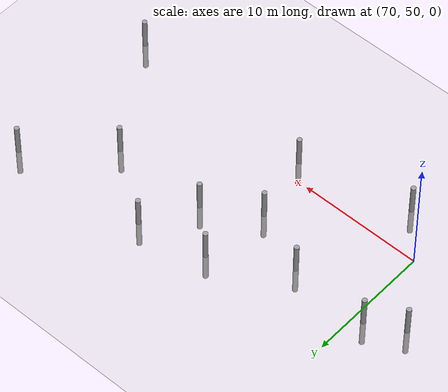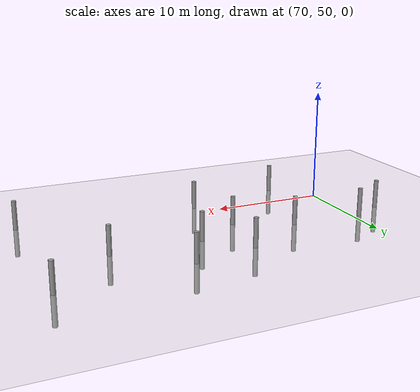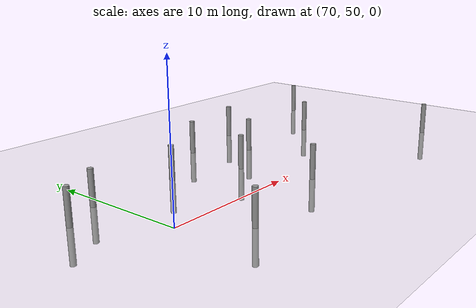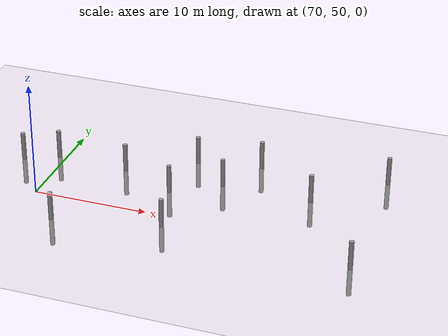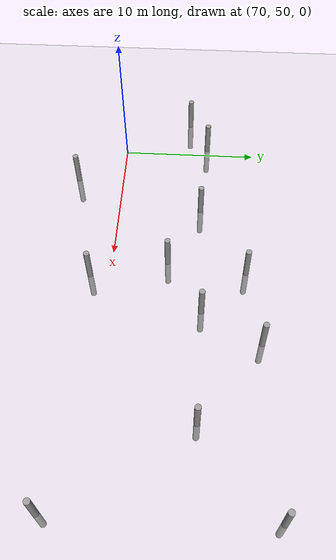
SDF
<sdf version="1.6">
 <world name="default">
  <model name="ground_plane">
   <static>1</static>
   <link name="link">
    <collision name="collision">
     <geometry><plane><normal>0 0 1</normal><size>100 100</size></plane></geometry>
     <surface><friction><ode><mu>100</mu><mu2>50</mu2></ode></friction></surface>
    </collision>
    <visual name="visual">
     <cast_shadows>0</cast_shadows>
     <geometry><plane><normal>0 0 1</normal><size>100 100</size></plane></geometry>
     <material>
      <script><uri>file://media/materials/scripts/gazebo.material</uri><name>Gazebo/Grey</name></script>
     </material>
    </visual>
   </link>
  </model>
  <model name="empty_pillars_2">
   <model name="empty_pillar_clone_10">
    <link name="link">
     <inertial>
      <mass>1</mass>
      <inertia><ixx>0.145833</ixx><ixy>0</ixy><ixz>0</ixz><iyy>0.145833</iyy><iyz>0</iyz><izz>0.125</izz></inertia>
     </inertial>
     <visual name="visual">
      <geometry><cylinder><radius>0.2</radius><length>5</length></cylinder></geometry>
      <material>
       <script><name>Gazebo/Grey</name><uri>file://media/materials/scripts/gazebo.material</uri></script>
       <shader type="vertex"><normal_map>__default__</normal_map></shader>
       <ambient>0.3 0.3 0.3 1</ambient>
       <diffuse>0.7 0.7 0.7 1</diffuse>
       <specular>0.01 0.01 0.01 1</specular>
       <emissive>0 0 0 1</emissive>
      </material>
     </visual>
     <collision name="collision">
      <geometry><cylinder><radius>0.05</radius><length>5</length></cylinder></geometry>
      <surface>
       <friction>
        <ode><mu>1</mu><mu2>1</mu2><fdir1>0 0 0</fdir1><slip1>0</slip1><slip2>0</slip2></ode>
        <torsional>
         <coefficient>1</coefficient>
         <patch_radius>0</patch_radius>
         <surface_radius>0</surface_radius>
         <use_patch_radius>1</use_patch_radius>
         <ode><slip>0</slip></ode>
        </torsional>
       </friction>
       <bounce><restitution_coefficient>0</restitution_coefficient><threshold>1e+06</threshold></bounce>
       <contact>
        <collide_without_contact>0</collide_without_contact>
        <collide_without_contact_bitmask>1</collide_without_contact_bitmask>
        <collide_bitmask>1</collide_bitmask>
        <ode>
         <soft_cfm>0</soft_cfm>
         <soft_erp>0.2</soft_erp>
         <kp>1e+13</kp>
         <kd>1</kd>
         <max_vel>0.01</max_vel>
         <min_depth>0</min_depth>
        </ode>
        <bullet>
         <split_impulse>1</split_impulse>
         <split_impulse_penetration_threshold>-0.01</split_impulse_penetration_threshold>
         <soft_cfm>0</soft_cfm>
         <soft_erp>0.2</soft_erp>
         <kp>1e+13</kp>
         <kd>1</kd>
        </bullet>
       </contact>
      </surface>
     </collision>
    </link>
    <static>0</static>
    <pose>13.5083 -16.8403 0 0 -0 0</pose>
   </model>
   <model name="empty_pillar_clone_11">
    <link name="link">
     <inertial>
      <mass>1</mass>
      <inertia><ixx>0.145833</ixx><ixy>0</ixy><ixz>0</ixz><iyy>0.145833</iyy><iyz>0</iyz><izz>0.125</izz></inertia>
     </inertial>
     <visual name="visual">
      <geometry><cylinder><radius>0.2</radius><length>5</length></cylinder></geometry>
      <material>
       <script><name>Gazebo/Grey</name><uri>file://media/materials/scripts/gazebo.material</uri></script>
       <shader type="vertex"><normal_map>__default__</normal_map></shader>
       <ambient>0.3 0.3 0.3 1</ambient>
       <diffuse>0.7 0.7 0.7 1</diffuse>
       <specular>0.01 0.01 0.01 1</specular>
       <emissive>0 0 0 1</emissive>
      </material>
     </visual>
     <collision name="collision">
      <geometry><cylinder><radius>0.05</radius><length>5</length></cylinder></geometry>
      <surface>
       <friction>
        <ode><mu>1</mu><mu2>1</mu2><fdir1>0 0 0</fdir1><slip1>0</slip1><slip2>0</slip2></ode>
        <torsional>
         <coefficient>1</coefficient>
         <patch_radius>0</patch_radius>
         <surface_radius>0</surface_radius>
         <use_patch_radius>1</use_patch_radius>
         <ode><slip>0</slip></ode>
        </torsional>
       </friction>
       <bounce><restitution_coefficient>0</restitution_coefficient><threshold>1e+06</threshold></bounce>
       <contact>
        <collide_without_contact>0</collide_without_contact>
        <collide_without_contact_bitmask>1</collide_without_contact_bitmask>
        <collide_bitmask>1</collide_bitmask>
        <ode>
         <soft_cfm>0</soft_cfm>
         <soft_erp>0.2</soft_erp>
         <kp>1e+13</kp>
         <kd>1</kd>
         <max_vel>0.01</max_vel>
         <min_depth>0</min_depth>
        </ode>
        <bullet>
         <split_impulse>1</split_impulse>
         <split_impulse_penetration_threshold>-0.01</split_impulse_penetration_threshold>
         <soft_cfm>0</soft_cfm>
         <soft_erp>0.2</soft_erp>
         <kp>1e+13</kp>
         <kd>1</kd>
        </bullet>
       </contact>
      </surface>
     </collision>
    </link>
    <static>0</static>
    <pose>7.98536 -17.8403 0 0 -0 0</pose>
   </model>
   <model name="empty_pillar_clone_12">
    <link name="link">
     <inertial>
      <mass>1</mass>
      <inertia><ixx>0.145833</ixx><ixy>0</ixy><ixz>0</ixz><iyy>0.145833</iyy><iyz>0</iyz><izz>0.125</izz></inertia>
     </inertial>
     <visual name="visual">
      <geometry><cylinder><radius>0.2</radius><length>5</length></cylinder></geometry>
      <material>
       <script><name>Gazebo/Grey</name><uri>file://media/materials/scripts/gazebo.material</uri></script>
       <shader type="vertex"><normal_map>__default__</normal_map></shader>
       <ambient>0.3 0.3 0.3 1</ambient>
       <diffuse>0.7 0.7 0.7 1</diffuse>
       <specular>0.01 0.01 0.01 1</specular>
       <emissive>0 0 0 1</emissive>
      </material>
     </visual>
     <collision name="collision">
      <geometry><cylinder><radius>0.05</radius><length>5</length></cylinder></geometry>
      <surface>
       <friction>
        <ode><mu>1</mu><mu2>1</mu2><fdir1>0 0 0</fdir1><slip1>0</slip1><slip2>0</slip2></ode>
        <torsional>
         <coefficient>1</coefficient>
         <patch_radius>0</patch_radius>
         <surface_radius>0</surface_radius>
         <use_patch_radius>1</use_patch_radius>
         <ode><slip>0</slip></ode>
        </torsional>
       </friction>
       <bounce><restitution_coefficient>0</restitution_coefficient><threshold>1e+06</threshold></bounce>
       <contact>
        <collide_without_contact>0</collide_without_contact>
        <collide_without_contact_bitmask>1</collide_without_contact_bitmask>
        <collide_bitmask>1</collide_bitmask>
        <ode>
         <soft_cfm>0</soft_cfm>
         <soft_erp>0.2</soft_erp>
         <kp>1e+13</kp>
         <kd>1</kd>
         <max_vel>0.01</max_vel>
         <min_depth>0</min_depth>
        </ode>
        <bullet>
         <split_impulse>1</split_impulse>
         <split_impulse_penetration_threshold>-0.01</split_impulse_penetration_threshold>
         <soft_cfm>0</soft_cfm>
         <soft_erp>0.2</soft_erp>
         <kp>1e+13</kp>
         <kd>1</kd>
        </bullet>
       </contact>
      </surface>
     </collision>
    </link>
    <static>0</static>
    <pose>-4.01464 -20.8403 0 0 -0 0</pose>
   </model>
   <model name="empty_pillar_clone_34">
    <link name="link">
     <inertial>
      <mass>1</mass>
      <inertia><ixx>0.145833</ixx><ixy>0</ixy><ixz>0</ixz><iyy>0.145833</iyy><iyz>0</iyz><izz>0.125</izz></inertia>
     </inertial>
     <visual name="visual">
      <geometry><cylinder><radius>0.2</radius><length>5</length></cylinder></geometry>
      <material>
       <script><name>Gazebo/Grey</name><uri>file://media/materials/scripts/gazebo.material</uri></script>
       <shader type="vertex"><normal_map>__default__</normal_map></shader>
       <ambient>0.3 0.3 0.3 1</ambient>
       <diffuse>0.7 0.7 0.7 1</diffuse>
       <specular>0.01 0.01 0.01 1</specular>
       <emissive>0 0 0 1</emissive>
      </material>
     </visual>
     <collision name="collision">
      <geometry><cylinder><radius>0.05</radius><length>5</length></cylinder></geometry>
      <surface>
       <friction>
        <ode><mu>1</mu><mu2>1</mu2><fdir1>0 0 0</fdir1><slip1>0</slip1><slip2>0</slip2></ode>
        <torsional>
         <coefficient>1</coefficient>
         <patch_radius>0</patch_radius>
         <surface_radius>0</surface_radius>
         <use_patch_radius>1</use_patch_radius>
         <ode><slip>0</slip></ode>
        </torsional>
       </friction>
       <bounce><restitution_coefficient>0</restitution_coefficient><threshold>1e+06</threshold></bounce>
       <contact>
        <collide_without_contact>0</collide_without_contact>
        <collide_without_contact_bitmask>1</collide_without_contact_bitmask>
        <collide_bitmask>1</collide_bitmask>
        <ode>
         <soft_cfm>0</soft_cfm>
         <soft_erp>0.2</soft_erp>
         <kp>1e+13</kp>
         <kd>1</kd>
         <max_vel>0.01</max_vel>
         <min_depth>0</min_depth>
        </ode>
        <bullet>
         <split_impulse>1</split_impulse>
         <split_impulse_penetration_threshold>-0.01</split_impulse_penetration_threshold>
         <soft_cfm>0</soft_cfm>
         <soft_erp>0.2</soft_erp>
         <kp>1e+13</kp>
         <kd>1</kd>
        </bullet>
       </contact>
      </surface>
     </collision>
    </link>
    <static>0</static>
    <pose>19.0861 -20.8946 0 0 -0 0</pose>
   </model>
   <model name="empty_pillar_clone_44">
    <link name="link">
     <inertial>
      <mass>1</mass>
      <inertia><ixx>0.145833</ixx><ixy>0</ixy><ixz>0</ixz><iyy>0.145833</iyy><iyz>0</iyz><izz>0.125</izz></inertia>
     </inertial>
     <visual name="visual">
      <geometry><cylinder><radius>0.2</radius><length>5</length></cylinder></geometry>
      <material>
       <script><name>Gazebo/Grey</name><uri>file://media/materials/scripts/gazebo.material</uri></script>
       <shader type="vertex"><normal_map>__default__</normal_map></shader>
       <ambient>0.3 0.3 0.3 1</ambient>
       <diffuse>0.7 0.7 0.7 1</diffuse>
       <specular>0.01 0.01 0.01 1</specular>
       <emissive>0 0 0 1</emissive>
      </material>
     </visual>
     <collision name="collision">
      <geometry><cylinder><radius>0.05</radius><length>5</length></cylinder></geometry>
      <surface>
       <friction>
        <ode><mu>1</mu><mu2>1</mu2><fdir1>0 0 0</fdir1><slip1>0</slip1><slip2>0</slip2></ode>
        <torsional>
         <coefficient>1</coefficient>
         <patch_radius>0</patch_radius>
         <surface_radius>0</surface_radius>
         <use_patch_radius>1</use_patch_radius>
         <ode><slip>0</slip></ode>
        </torsional>
       </friction>
       <bounce><restitution_coefficient>0</restitution_coefficient><threshold>1e+06</threshold></bounce>
       <contact>
        <collide_without_contact>0</collide_without_contact>
        <collide_without_contact_bitmask>1</collide_without_contact_bitmask>
        <collide_bitmask>1</collide_bitmask>
        <ode>
         <soft_cfm>0</soft_cfm>
         <soft_erp>0.2</soft_erp>
         <kp>1e+13</kp>
         <kd>1</kd>
         <max_vel>0.01</max_vel>
         <min_depth>0</min_depth>
        </ode>
        <bullet>
         <split_impulse>1</split_impulse>
         <split_impulse_penetration_threshold>-0.01</split_impulse_penetration_threshold>
         <soft_cfm>0</soft_cfm>
         <soft_erp>0.2</soft_erp>
         <kp>1e+13</kp>
         <kd>1</kd>
        </bullet>
       </contact>
      </surface>
     </collision>
    </link>
    <static>0</static>
    <pose>-6.78285 -22.2729 0 0 -0 0</pose>
   </model>
   <model name="empty_pillar_clone_46">
    <link name="link">
     <inertial>
      <mass>1</mass>
      <inertia><ixx>0.145833</ixx><ixy>0</ixy><ixz>0</ixz><iyy>0.145833</iyy><iyz>0</iyz><izz>0.125</izz></inertia>
     </inertial>
     <visual name="visual">
      <geometry><cylinder><radius>0.2</radius><length>5</length></cylinder></geometry>
      <material>
       <script><name>Gazebo/Grey</name><uri>file://media/materials/scripts/gazebo.material</uri></script>
       <shader type="vertex"><normal_map>__default__</normal_map></shader>
       <ambient>0.3 0.3 0.3 1</ambient>
       <diffuse>0.7 0.7 0.7 1</diffuse>
       <specular>0.01 0.01 0.01 1</specular>
       <emissive>0 0 0 1</emissive>
      </material>
     </visual>
     <collision name="collision">
      <geometry><cylinder><radius>0.05</radius><length>5</length></cylinder></geometry>
      <surface>
       <friction>
        <ode><mu>1</mu><mu2>1</mu2><fdir1>0 0 0</fdir1><slip1>0</slip1><slip2>0</slip2></ode>
        <torsional>
         <coefficient>1</coefficient>
         <patch_radius>0</patch_radius>
         <surface_radius>0</surface_radius>
         <use_patch_radius>1</use_patch_radius>
         <ode><slip>0</slip></ode>
        </torsional>
       </friction>
       <bounce><restitution_coefficient>0</restitution_coefficient><threshold>1e+06</threshold></bounce>
       <contact>
        <collide_without_contact>0</collide_without_contact>
        <collide_without_contact_bitmask>1</collide_without_contact_bitmask>
        <collide_bitmask>1</collide_bitmask>
        <ode>
         <soft_cfm>0</soft_cfm>
         <soft_erp>0.2</soft_erp>
         <kp>1e+13</kp>
         <kd>1</kd>
         <max_vel>0.01</max_vel>
         <min_depth>0</min_depth>
        </ode>
        <bullet>
         <split_impulse>1</split_impulse>
         <split_impulse_penetration_threshold>-0.01</split_impulse_penetration_threshold>
         <soft_cfm>0</soft_cfm>
         <soft_erp>0.2</soft_erp>
         <kp>1e+13</kp>
         <kd>1</kd>
        </bullet>
       </contact>
      </surface>
     </collision>
    </link>
    <static>0</static>
    <pose>2.45033 -21.185 0 0 -0 0</pose>
   </model>
   <model name="empty_pillar_clone_52">
    <link name="link">
     <inertial>
      <mass>1</mass>
      <inertia><ixx>0.145833</ixx><ixy>0</ixy><ixz>0</ixz><iyy>0.145833</iyy><iyz>0</iyz><izz>0.125</izz></inertia>
     </inertial>
     <visual name="visual">
      <geometry><cylinder><radius>0.2</radius><length>5</length></cylinder></geometry>
      <material>
       <script><name>Gazebo/Grey</name><uri>file://media/materials/scripts/gazebo.material</uri></script>
       <shader type="vertex"><normal_map>__default__</normal_map></shader>
       <ambient>0.3 0.3 0.3 1</ambient>
       <diffuse>0.7 0.7 0.7 1</diffuse>
       <specular>0.01 0.01 0.01 1</specular>
       <emissive>0 0 0 1</emissive>
      </material>
     </visual>
     <collision name="collision">
      <geometry><cylinder><radius>0.05</radius><length>5</length></cylinder></geometry>
      <surface>
       <friction>
        <ode><mu>1</mu><mu2>1</mu2><fdir1>0 0 0</fdir1><slip1>0</slip1><slip2>0</slip2></ode>
        <torsional>
         <coefficient>1</coefficient>
         <patch_radius>0</patch_radius>
         <surface_radius>0</surface_radius>
         <use_patch_radius>1</use_patch_radius>
         <ode><slip>0</slip></ode>
        </torsional>
       </friction>
       <bounce><restitution_coefficient>0</restitution_coefficient><threshold>1e+06</threshold></bounce>
       <contact>
        <collide_without_contact>0</collide_without_contact>
        <collide_without_contact_bitmask>1</collide_without_contact_bitmask>
        <collide_bitmask>1</collide_bitmask>
        <ode>
         <soft_cfm>0</soft_cfm>
         <soft_erp>0.2</soft_erp>
         <kp>1e+13</kp>
         <kd>1</kd>
         <max_vel>0.01</max_vel>
         <min_depth>0</min_depth>
        </ode>
        <bullet>
         <split_impulse>1</split_impulse>
         <split_impulse_penetration_threshold>-0.01</split_impulse_penetration_threshold>
         <soft_cfm>0</soft_cfm>
         <soft_erp>0.2</soft_erp>
         <kp>1e+13</kp>
         <kd>1</kd>
        </bullet>
       </contact>
      </surface>
     </collision>
    </link>
    <static>0</static>
    <pose>11.2833 -20.8743 0 0 -0 0</pose>
   </model>
   <model name="empty_pillar_clone_53">
    <link name="link">
     <inertial>
      <mass>1</mass>
      <inertia><ixx>0.145833</ixx><ixy>0</ixy><ixz>0</ixz><iyy>0.145833</iyy><iyz>0</iyz><izz>0.125</izz></inertia>
     </inertial>
     <visual name="visual">
      <geometry><cylinder><radius>0.2</radius><length>5</length></cylinder></geometry>
      <material>
       <script><name>Gazebo/Grey</name><uri>file://media/materials/scripts/gazebo.material</uri></script>
       <shader type="vertex"><normal_map>__default__</normal_map></shader>
       <ambient>0.3 0.3 0.3 1</ambient>
       <diffuse>0.7 0.7 0.7 1</diffuse>
       <specular>0.01 0.01 0.01 1</specular>
       <emissive>0 0 0 1</emissive>
      </material>
     </visual>
     <collision name="collision">
      <geometry><cylinder><radius>0.05</radius><length>5</length></cylinder></geometry>
      <surface>
       <friction>
        <ode><mu>1</mu><mu2>1</mu2><fdir1>0 0 0</fdir1><slip1>0</slip1><slip2>0</slip2></ode>
        <torsional>
         <coefficient>1</coefficient>
         <patch_radius>0</patch_radius>
         <surface_radius>0</surface_radius>
         <use_patch_radius>1</use_patch_radius>
         <ode><slip>0</slip></ode>
        </torsional>
       </friction>
       <bounce><restitution_coefficient>0</restitution_coefficient><threshold>1e+06</threshold></bounce>
       <contact>
        <collide_without_contact>0</collide_without_contact>
        <collide_without_contact_bitmask>1</collide_without_contact_bitmask>
        <collide_bitmask>1</collide_bitmask>
        <ode>
         <soft_cfm>0</soft_cfm>
         <soft_erp>0.2</soft_erp>
         <kp>1e+13</kp>
         <kd>1</kd>
         <max_vel>0.01</max_vel>
         <min_depth>0</min_depth>
        </ode>
        <bullet>
         <split_impulse>1</split_impulse>
         <split_impulse_penetration_threshold>-0.01</split_impulse_penetration_threshold>
         <soft_cfm>0</soft_cfm>
         <soft_erp>0.2</soft_erp>
         <kp>1e+13</kp>
         <kd>1</kd>
        </bullet>
       </contact>
      </surface>
     </collision>
    </link>
    <static>0</static>
    <pose>7.32522 -23.3523 0 0 -0 0</pose>
   </model>
   <model name="empty_pillar_clone_54">
    <link name="link">
     <inertial>
      <mass>1</mass>
      <inertia><ixx>0.145833</ixx><ixy>0</ixy><ixz>0</ixz><iyy>0.145833</iyy><iyz>0</iyz><izz>0.125</izz></inertia>
     </inertial>
     <visual name="visual">
      <geometry><cylinder><radius>0.2</radius><length>5</length></cylinder></geometry>
      <material>
       <script><name>Gazebo/Grey</name><uri>file://media/materials/scripts/gazebo.material</uri></script>
       <shader type="vertex"><normal_map>__default__</normal_map></shader>
       <ambient>0.3 0.3 0.3 1</ambient>
       <diffuse>0.7 0.7 0.7 1</diffuse>
       <specular>0.01 0.01 0.01 1</specular>
       <emissive>0 0 0 1</emissive>
      </material>
     </visual>
     <collision name="collision">
      <geometry><cylinder><radius>0.05</radius><length>5</length></cylinder></geometry>
      <surface>
       <friction>
        <ode><mu>1</mu><mu2>1</mu2><fdir1>0 0 0</fdir1><slip1>0</slip1><slip2>0</slip2></ode>
        <torsional>
         <coefficient>1</coefficient>
         <patch_radius>0</patch_radius>
         <surface_radius>0</surface_radius>
         <use_patch_radius>1</use_patch_radius>
         <ode><slip>0</slip></ode>
        </torsional>
       </friction>
       <bounce><restitution_coefficient>0</restitution_coefficient><threshold>1e+06</threshold></bounce>
       <contact>
        <collide_without_contact>0</collide_without_contact>
        <collide_without_contact_bitmask>1</collide_without_contact_bitmask>
        <collide_bitmask>1</collide_bitmask>
        <ode>
         <soft_cfm>0</soft_cfm>
         <soft_erp>0.2</soft_erp>
         <kp>1e+13</kp>
         <kd>1</kd>
         <max_vel>0.01</max_vel>
         <min_depth>0</min_depth>
        </ode>
        <bullet>
         <split_impulse>1</split_impulse>
         <split_impulse_penetration_threshold>-0.01</split_impulse_penetration_threshold>
         <soft_cfm>0</soft_cfm>
         <soft_erp>0.2</soft_erp>
         <kp>1e+13</kp>
         <kd>1</kd>
        </bullet>
       </contact>
      </surface>
     </collision>
    </link>
    <static>0</static>
    <pose>24.557 -15.8784 0 0 -0 0</pose>
   </model>
   <static>0</static>
   <pose>73.3006 77.2503 0 0 -0 0</pose>
  </model>
  <model name="empty_pillars_3">
   <model name="empty_pillar_clone_23">
    <link name="link">
     <inertial>
      <mass>1</mass>
      <inertia><ixx>0.145833</ixx><ixy>0</ixy><ixz>0</ixz><iyy>0.145833</iyy><iyz>0</iyz><izz>0.125</izz></inertia>
     </inertial>
     <visual name="visual">
      <geometry><cylinder><radius>0.2</radius><length>5</length></cylinder></geometry>
      <material>
       <script><name>Gazebo/Grey</name><uri>file://media/materials/scripts/gazebo.material</uri></script>
       <shader type="vertex"><normal_map>__default__</normal_map></shader>
       <ambient>0.3 0.3 0.3 1</ambient>
       <diffuse>0.7 0.7 0.7 1</diffuse>
       <specular>0.01 0.01 0.01 1</specular>
       <emissive>0 0 0 1</emissive>
      </material>
     </visual>
     <collision name="collision">
      <geometry><cylinder><radius>0.05</radius><length>5</length></cylinder></geometry>
      <surface>
       <friction>
        <ode><mu>1</mu><mu2>1</mu2><fdir1>0 0 0</fdir1><slip1>0</slip1><slip2>0</slip2></ode>
        <torsional>
         <coefficient>1</coefficient>
         <patch_radius>0</patch_radius>
         <surface_radius>0</surface_radius>
         <use_patch_radius>1</use_patch_radius>
         <ode><slip>0</slip></ode>
        </torsional>
       </friction>
       <bounce><restitution_coefficient>0</restitution_coefficient><threshold>1e+06</threshold></bounce>
       <contact>
        <collide_without_contact>0</collide_without_contact>
        <collide_without_contact_bitmask>1</collide_without_contact_bitmask>
        <collide_bitmask>1</collide_bitmask>
        <ode>
         <soft_cfm>0</soft_cfm>
         <soft_erp>0.2</soft_erp>
         <kp>1e+13</kp>
         <kd>1</kd>
         <max_vel>0.01</max_vel>
         <min_depth>0</min_depth>
        </ode>
        <bullet>
         <split_impulse>1</split_impulse>
         <split_impulse_penetration_threshold>-0.01</split_impulse_penetration_threshold>
         <soft_cfm>0</soft_cfm>
         <soft_erp>0.2</soft_erp>
         <kp>1e+13</kp>
         <kd>1</kd>
        </bullet>
       </contact>
      </surface>
     </collision>
    </link>
    <static>0</static>
    <pose>-1.21984 18.1273 0 0 -0 0</pose>
   </model>
   <model name="empty_pillar_clone_26">
    <link name="link">
     <inertial>
      <mass>1</mass>
      <inertia><ixx>0.145833</ixx><ixy>0</ixy><ixz>0</ixz><iyy>0.145833</iyy><iyz>0</iyz><izz>0.125</izz></inertia>
     </inertial>
     <visual name="visual">
      <geometry><cylinder><radius>0.2</radius><length>5</length></cylinder></geometry>
      <material>
       <script><name>Gazebo/Grey</name><uri>file://media/materials/scripts/gazebo.material</uri></script>
       <shader type="vertex"><normal_map>__default__</normal_map></shader>
       <ambient>0.3 0.3 0.3 1</ambient>
       <diffuse>0.7 0.7 0.7 1</diffuse>
       <specular>0.01 0.01 0.01 1</specular>
       <emissive>0 0 0 1</emissive>
      </material>
     </visual>
     <collision name="collision">
      <geometry><cylinder><radius>0.05</radius><length>5</length></cylinder></geometry>
      <surface>
       <friction>
        <ode><mu>1</mu><mu2>1</mu2><fdir1>0 0 0</fdir1><slip1>0</slip1><slip2>0</slip2></ode>
        <torsional>
         <coefficient>1</coefficient>
         <patch_radius>0</patch_radius>
         <surface_radius>0</surface_radius>
         <use_patch_radius>1</use_patch_radius>
         <ode><slip>0</slip></ode>
        </torsional>
       </friction>
       <bounce><restitution_coefficient>0</restitution_coefficient><threshold>1e+06</threshold></bounce>
       <contact>
        <collide_without_contact>0</collide_without_contact>
        <collide_without_contact_bitmask>1</collide_without_contact_bitmask>
        <collide_bitmask>1</collide_bitmask>
        <ode>
         <soft_cfm>0</soft_cfm>
         <soft_erp>0.2</soft_erp>
         <kp>1e+13</kp>
         <kd>1</kd>
         <max_vel>0.01</max_vel>
         <min_depth>0</min_depth>
        </ode>
        <bullet>
         <split_impulse>1</split_impulse>
         <split_impulse_penetration_threshold>-0.01</split_impulse_penetration_threshold>
         <soft_cfm>0</soft_cfm>
         <soft_erp>0.2</soft_erp>
         <kp>1e+13</kp>
         <kd>1</kd>
        </bullet>
       </contact>
      </surface>
     </collision>
    </link>
    <static>0</static>
    <pose>7.70652 20.1444 0 0 -0 0</pose>
   </model>
   <model name="empty_pillar_clone_30">
    <link name="link">
     <inertial>
      <mass>1</mass>
      <inertia><ixx>0.145833</ixx><ixy>0</ixy><ixz>0</ixz><iyy>0.145833</iyy><iyz>0</iyz><izz>0.125</izz></inertia>
     </inertial>
     <visual name="visual">
      <geometry><cylinder><radius>0.2</radius><length>5</length></cylinder></geometry>
      <material>
       <script><name>Gazebo/Grey</name><uri>file://media/materials/scripts/gazebo.material</uri></script>
       <shader type="vertex"><normal_map>__default__</normal_map></shader>
       <ambient>0.3 0.3 0.3 1</ambient>
       <diffuse>0.7 0.7 0.7 1</diffuse>
       <specular>0.01 0.01 0.01 1</specular>
       <emissive>0 0 0 1</emissive>
      </material>
     </visual>
     <collision name="collision">
      <geometry><cylinder><radius>0.05</radius><length>5</length></cylinder></geometry>
      <surface>
       <friction>
        <ode><mu>1</mu><mu2>1</mu2><fdir1>0 0 0</fdir1><slip1>0</slip1><slip2>0</slip2></ode>
        <torsional>
         <coefficient>1</coefficient>
         <patch_radius>0</patch_radius>
         <surface_radius>0</surface_radius>
         <use_patch_radius>1</use_patch_radius>
         <ode><slip>0</slip></ode>
        </torsional>
       </friction>
       <bounce><restitution_coefficient>0</restitution_coefficient><threshold>1e+06</threshold></bounce>
       <contact>
        <collide_without_contact>0</collide_without_contact>
        <collide_without_contact_bitmask>1</collide_without_contact_bitmask>
        <collide_bitmask>1</collide_bitmask>
        <ode>
         <soft_cfm>0</soft_cfm>
         <soft_erp>0.2</soft_erp>
         <kp>1e+13</kp>
         <kd>1</kd>
         <max_vel>0.01</max_vel>
         <min_depth>0</min_depth>
        </ode>
        <bullet>
         <split_impulse>1</split_impulse>
         <split_impulse_penetration_threshold>-0.01</split_impulse_penetration_threshold>
         <soft_cfm>0</soft_cfm>
         <soft_erp>0.2</soft_erp>
         <kp>1e+13</kp>
         <kd>1</kd>
        </bullet>
       </contact>
      </surface>
     </collision>
    </link>
    <static>0</static>
    <pose>23.752 19.2231 0 0 -0 0</pose>
   </model>
   <static>0</static>
   <pose>74.2615 28.3982 0 0 -0 0</pose>
  </model>
 </world>
</sdf>
